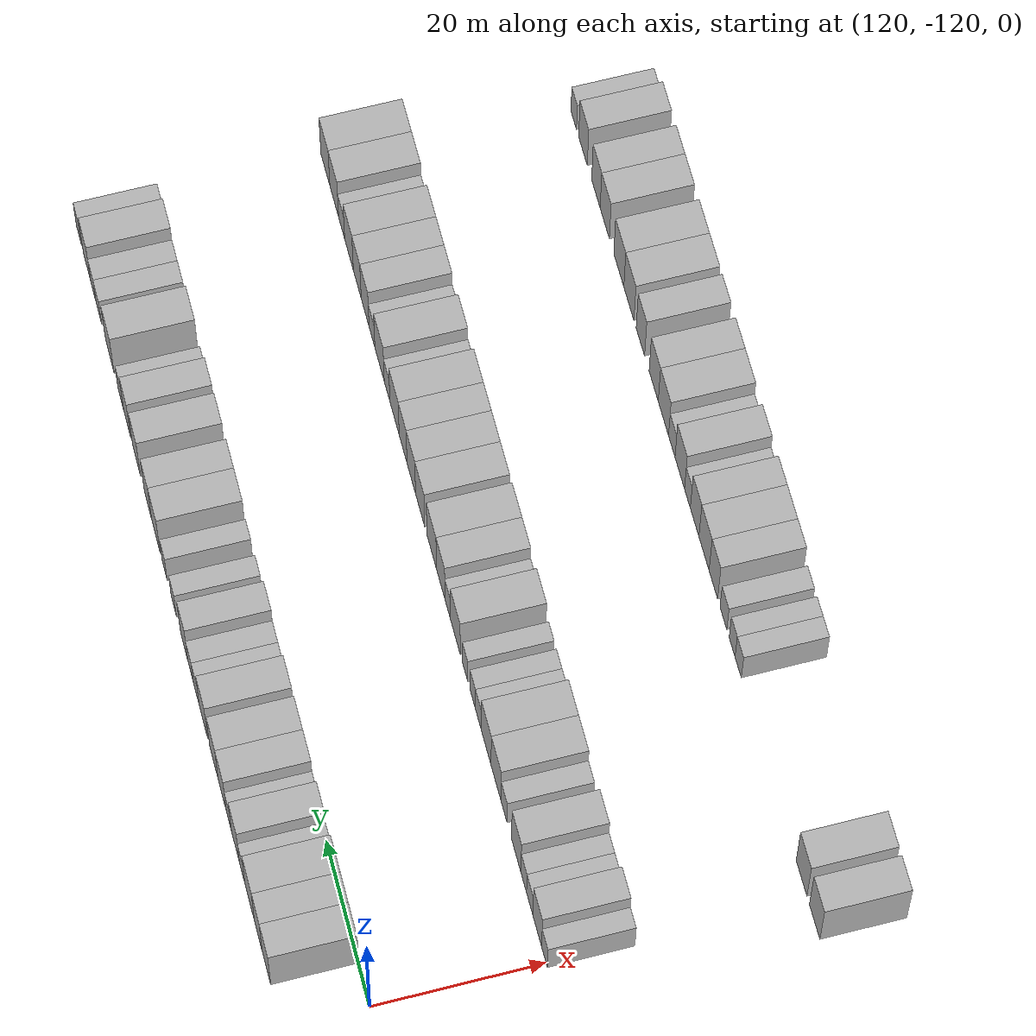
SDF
<sdf version="1.6">
 <world name="default">
  <model name="building_791">
   <static>1</static>
   <pose>115.0000 -112.8110 0 0.000000 0.000000 0.000000</pose>
   <link name="link">
    <pose>0 0 4.50 0 0 0</pose>
    <collision name="collision"><geometry><box><size>10.0000 4.0165 9.0000</size></box></geometry></collision>
    <visual name="visual">
     <cast_shadows>0</cast_shadows>
     <geometry><box><size>10.0000 4.0165 9.0000</size></box></geometry>
     <material>
      <script>
       <uri>model://HANNAS_wall/materials/scripts</uri>
       <uri>model://HANNAS_wall/materials/textures</uri>
       <name>vrc/HANNAS_wall</name>
      </script>
     </material>
    </visual>
   </link>
  </model>
  <model name="building_792">
   <static>1</static>
   <pose>115.0000 -108.9823 0 0.000000 0.000000 0.000000</pose>
   <link name="link">
    <pose>0 0 4.50 0 0 0</pose>
    <collision name="collision"><geometry><box><size>10.0000 3.6409 9.0000</size></box></geometry></collision>
    <visual name="visual">
     <cast_shadows>0</cast_shadows>
     <geometry><box><size>10.0000 3.6409 9.0000</size></box></geometry>
     <material>
      <script>
       <uri>model://HANNAS_wall/materials/scripts</uri>
       <uri>model://HANNAS_wall/materials/textures</uri>
       <name>vrc/HANNAS_wall</name>
      </script>
     </material>
    </visual>
   </link>
  </model>
  <model name="building_793">
   <static>1</static>
   <pose>115.0000 -104.9200 0 0.000000 0.000000 0.000000</pose>
   <link name="link">
    <pose>0 0 4.50 0 0 0</pose>
    <collision name="collision"><geometry><box><size>10.0000 4.4837 9.0000</size></box></geometry></collision>
    <visual name="visual">
     <cast_shadows>0</cast_shadows>
     <geometry><box><size>10.0000 4.4837 9.0000</size></box></geometry>
     <material>
      <script>
       <uri>model://HANNAS_wall/materials/scripts</uri>
       <uri>model://HANNAS_wall/materials/textures</uri>
       <name>vrc/HANNAS_wall</name>
      </script>
     </material>
    </visual>
   </link>
  </model>
  <model name="building_794">
   <static>1</static>
   <pose>115.0000 -101.3698 0 0.000000 0.000000 0.000000</pose>
   <link name="link">
    <pose>0 0 3.00 0 0 0</pose>
    <collision name="collision"><geometry><box><size>10.0000 2.6167 6.0000</size></box></geometry></collision>
    <visual name="visual">
     <cast_shadows>0</cast_shadows>
     <geometry><box><size>10.0000 2.6167 6.0000</size></box></geometry>
     <material>
      <script>
       <uri>model://HANNAS_wall/materials/scripts</uri>
       <uri>model://HANNAS_wall/materials/textures</uri>
       <name>vrc/HANNAS_wall</name>
      </script>
     </material>
    </visual>
   </link>
  </model>
  <model name="building_795">
   <static>1</static>
   <pose>115.0000 -98.1419 0 0.000000 0.000000 0.000000</pose>
   <link name="link">
    <pose>0 0 4.50 0 0 0</pose>
    <collision name="collision"><geometry><box><size>10.0000 3.8392 9.0000</size></box></geometry></collision>
    <visual name="visual">
     <cast_shadows>0</cast_shadows>
     <geometry><box><size>10.0000 3.8392 9.0000</size></box></geometry>
     <material>
      <script>
       <uri>model://HANNAS_wall/materials/scripts</uri>
       <uri>model://HANNAS_wall/materials/textures</uri>
       <name>vrc/HANNAS_wall</name>
      </script>
     </material>
    </visual>
   </link>
  </model>
  <model name="building_796">
   <static>1</static>
   <pose>115.0000 -95.0154 0 0.000000 0.000000 0.000000</pose>
   <link name="link">
    <pose>0 0 3.00 0 0 0</pose>
    <collision name="collision"><geometry><box><size>10.0000 2.4139 6.0000</size></box></geometry></collision>
    <visual name="visual">
     <cast_shadows>0</cast_shadows>
     <geometry><box><size>10.0000 2.4139 6.0000</size></box></geometry>
     <material>
      <script>
       <uri>model://HANNAS_wall/materials/scripts</uri>
       <uri>model://HANNAS_wall/materials/textures</uri>
       <name>vrc/HANNAS_wall</name>
      </script>
     </material>
    </visual>
   </link>
  </model>
  <model name="building_797">
   <static>1</static>
   <pose>115.0000 -91.8523 0 0.000000 0.000000 0.000000</pose>
   <link name="link">
    <pose>0 0 4.50 0 0 0</pose>
    <collision name="collision"><geometry><box><size>10.0000 3.9121 9.0000</size></box></geometry></collision>
    <visual name="visual">
     <cast_shadows>0</cast_shadows>
     <geometry><box><size>10.0000 3.9121 9.0000</size></box></geometry>
     <material>
      <script>
       <uri>model://HANNAS_wall/materials/scripts</uri>
       <uri>model://HANNAS_wall/materials/textures</uri>
       <name>vrc/HANNAS_wall</name>
      </script>
     </material>
    </visual>
   </link>
  </model>
  <model name="building_798">
   <static>1</static>
   <pose>115.0000 -87.8461 0 0.000000 0.000000 0.000000</pose>
   <link name="link">
    <pose>0 0 4.50 0 0 0</pose>
    <collision name="collision"><geometry><box><size>10.0000 4.1003 9.0000</size></box></geometry></collision>
    <visual name="visual">
     <cast_shadows>0</cast_shadows>
     <geometry><box><size>10.0000 4.1003 9.0000</size></box></geometry>
     <material>
      <script>
       <uri>model://HANNAS_wall/materials/scripts</uri>
       <uri>model://HANNAS_wall/materials/textures</uri>
       <name>vrc/HANNAS_wall</name>
      </script>
     </material>
    </visual>
   </link>
  </model>
  <model name="building_799">
   <static>1</static>
   <pose>115.0000 -82.7692 0 0.000000 0.000000 0.000000</pose>
   <link name="link">
    <pose>0 0 4.50 0 0 0</pose>
    <collision name="collision"><geometry><box><size>10.0000 4.0535 9.0000</size></box></geometry></collision>
    <visual name="visual">
     <cast_shadows>0</cast_shadows>
     <geometry><box><size>10.0000 4.0535 9.0000</size></box></geometry>
     <material>
      <script>
       <uri>model://HANNAS_wall/materials/scripts</uri>
       <uri>model://HANNAS_wall/materials/textures</uri>
       <name>vrc/HANNAS_wall</name>
      </script>
     </material>
    </visual>
   </link>
  </model>
  <model name="building_800">
   <static>1</static>
   <pose>115.0000 -79.3093 0 0.000000 0.000000 0.000000</pose>
   <link name="link">
    <pose>0 0 3.00 0 0 0</pose>
    <collision name="collision"><geometry><box><size>10.0000 2.8663 6.0000</size></box></geometry></collision>
    <visual name="visual">
     <cast_shadows>0</cast_shadows>
     <geometry><box><size>10.0000 2.8663 6.0000</size></box></geometry>
     <material>
      <script>
       <uri>model://HANNAS_wall/materials/scripts</uri>
       <uri>model://HANNAS_wall/materials/textures</uri>
       <name>vrc/HANNAS_wall</name>
      </script>
     </material>
    </visual>
   </link>
  </model>
  <model name="building_801">
   <static>1</static>
   <pose>115.0000 -76.5181 0 0.000000 0.000000 0.000000</pose>
   <link name="link">
    <pose>0 0 3.00 0 0 0</pose>
    <collision name="collision"><geometry><box><size>10.0000 2.7161 6.0000</size></box></geometry></collision>
    <visual name="visual">
     <cast_shadows>0</cast_shadows>
     <geometry><box><size>10.0000 2.7161 6.0000</size></box></geometry>
     <material>
      <script>
       <uri>model://HANNAS_wall/materials/scripts</uri>
       <uri>model://HANNAS_wall/materials/textures</uri>
       <name>vrc/HANNAS_wall</name>
      </script>
     </material>
    </visual>
   </link>
  </model>
  <model name="building_802">
   <static>1</static>
   <pose>115.0000 -73.3330 0 0.000000 0.000000 0.000000</pose>
   <link name="link">
    <pose>0 0 4.50 0 0 0</pose>
    <collision name="collision"><geometry><box><size>10.0000 3.6541 9.0000</size></box></geometry></collision>
    <visual name="visual">
     <cast_shadows>0</cast_shadows>
     <geometry><box><size>10.0000 3.6541 9.0000</size></box></geometry>
     <material>
      <script>
       <uri>model://HANNAS_wall/materials/scripts</uri>
       <uri>model://HANNAS_wall/materials/textures</uri>
       <name>vrc/HANNAS_wall</name>
      </script>
     </material>
    </visual>
   </link>
  </model>
  <model name="building_803">
   <static>1</static>
   <pose>115.0000 -68.2081 0 0.000000 0.000000 0.000000</pose>
   <link name="link">
    <pose>0 0 3.00 0 0 0</pose>
    <collision name="collision"><geometry><box><size>10.0000 2.5956 6.0000</size></box></geometry></collision>
    <visual name="visual">
     <cast_shadows>0</cast_shadows>
     <geometry><box><size>10.0000 2.5956 6.0000</size></box></geometry>
     <material>
      <script>
       <uri>model://HANNAS_wall/materials/scripts</uri>
       <uri>model://HANNAS_wall/materials/textures</uri>
       <name>vrc/HANNAS_wall</name>
      </script>
     </material>
    </visual>
   </link>
  </model>
  <model name="building_804">
   <static>1</static>
   <pose>115.0000 -63.6283 0 0.000000 0.000000 0.000000</pose>
   <link name="link">
    <pose>0 0 3.00 0 0 0</pose>
    <collision name="collision"><geometry><box><size>10.0000 2.5640 6.0000</size></box></geometry></collision>
    <visual name="visual">
     <cast_shadows>0</cast_shadows>
     <geometry><box><size>10.0000 2.5640 6.0000</size></box></geometry>
     <material>
      <script>
       <uri>model://HANNAS_wall/materials/scripts</uri>
       <uri>model://HANNAS_wall/materials/textures</uri>
       <name>vrc/HANNAS_wall</name>
      </script>
     </material>
    </visual>
   </link>
  </model>
  <model name="building_805">
   <static>1</static>
   <pose>115.0000 -59.2477 0 0.000000 0.000000 0.000000</pose>
   <link name="link">
    <pose>0 0 4.50 0 0 0</pose>
    <collision name="collision"><geometry><box><size>10.0000 4.1971 9.0000</size></box></geometry></collision>
    <visual name="visual">
     <cast_shadows>0</cast_shadows>
     <geometry><box><size>10.0000 4.1971 9.0000</size></box></geometry>
     <material>
      <script>
       <uri>model://HANNAS_wall/materials/scripts</uri>
       <uri>model://HANNAS_wall/materials/textures</uri>
       <name>vrc/HANNAS_wall</name>
      </script>
     </material>
    </visual>
   </link>
  </model>
  <model name="building_806">
   <static>1</static>
   <pose>115.0000 -55.2984 0 0.000000 0.000000 0.000000</pose>
   <link name="link">
    <pose>0 0 4.50 0 0 0</pose>
    <collision name="collision"><geometry><box><size>10.0000 3.7016 9.0000</size></box></geometry></collision>
    <visual name="visual">
     <cast_shadows>0</cast_shadows>
     <geometry><box><size>10.0000 3.7016 9.0000</size></box></geometry>
     <material>
      <script>
       <uri>model://HANNAS_wall/materials/scripts</uri>
       <uri>model://HANNAS_wall/materials/textures</uri>
       <name>vrc/HANNAS_wall</name>
      </script>
     </material>
    </visual>
   </link>
  </model>
  <model name="building_807">
   <static>1</static>
   <pose>115.0000 -49.4723 0 0.000000 0.000000 0.000000</pose>
   <link name="link">
    <pose>0 0 4.50 0 0 0</pose>
    <collision name="collision"><geometry><box><size>10.0000 3.9506 9.0000</size></box></geometry></collision>
    <visual name="visual">
     <cast_shadows>0</cast_shadows>
     <geometry><box><size>10.0000 3.9506 9.0000</size></box></geometry>
     <material>
      <script>
       <uri>model://HANNAS_wall/materials/scripts</uri>
       <uri>model://HANNAS_wall/materials/textures</uri>
       <name>vrc/HANNAS_wall</name>
      </script>
     </material>
    </visual>
   </link>
  </model>
  <model name="building_808">
   <static>1</static>
   <pose>115.0000 -44.6954 0 0.000000 0.000000 0.000000</pose>
   <link name="link">
    <pose>0 0 4.50 0 0 0</pose>
    <collision name="collision"><geometry><box><size>10.0000 3.6032 9.0000</size></box></geometry></collision>
    <visual name="visual">
     <cast_shadows>0</cast_shadows>
     <geometry><box><size>10.0000 3.6032 9.0000</size></box></geometry>
     <material>
      <script>
       <uri>model://HANNAS_wall/materials/scripts</uri>
       <uri>model://HANNAS_wall/materials/textures</uri>
       <name>vrc/HANNAS_wall</name>
      </script>
     </material>
    </visual>
   </link>
  </model>
  <model name="building_809">
   <static>1</static>
   <pose>115.0000 -41.4420 0 0.000000 0.000000 0.000000</pose>
   <link name="link">
    <pose>0 0 3.00 0 0 0</pose>
    <collision name="collision"><geometry><box><size>10.0000 2.9036 6.0000</size></box></geometry></collision>
    <visual name="visual">
     <cast_shadows>0</cast_shadows>
     <geometry><box><size>10.0000 2.9036 6.0000</size></box></geometry>
     <material>
      <script>
       <uri>model://HANNAS_wall/materials/scripts</uri>
       <uri>model://HANNAS_wall/materials/textures</uri>
       <name>vrc/HANNAS_wall</name>
      </script>
     </material>
    </visual>
   </link>
  </model>
  <model name="building_810">
   <static>1</static>
   <pose>115.0000 -35.7564 0 0.000000 0.000000 0.000000</pose>
   <link name="link">
    <pose>0 0 4.50 0 0 0</pose>
    <collision name="collision"><geometry><box><size>10.0000 4.4676 9.0000</size></box></geometry></collision>
    <visual name="visual">
     <cast_shadows>0</cast_shadows>
     <geometry><box><size>10.0000 4.4676 9.0000</size></box></geometry>
     <material>
      <script>
       <uri>model://HANNAS_wall/materials/scripts</uri>
       <uri>model://HANNAS_wall/materials/textures</uri>
       <name>vrc/HANNAS_wall</name>
      </script>
     </material>
    </visual>
   </link>
  </model>
  <model name="building_811">
   <static>1</static>
   <pose>115.0000 -30.0837 0 0.000000 0.000000 0.000000</pose>
   <link name="link">
    <pose>0 0 3.00 0 0 0</pose>
    <collision name="collision"><geometry><box><size>10.0000 2.8776 6.0000</size></box></geometry></collision>
    <visual name="visual">
     <cast_shadows>0</cast_shadows>
     <geometry><box><size>10.0000 2.8776 6.0000</size></box></geometry>
     <material>
      <script>
       <uri>model://HANNAS_wall/materials/scripts</uri>
       <uri>model://HANNAS_wall/materials/textures</uri>
       <name>vrc/HANNAS_wall</name>
      </script>
     </material>
    </visual>
   </link>
  </model>
  <model name="building_812">
   <static>1</static>
   <pose>115.0000 -27.2597 0 0.000000 0.000000 0.000000</pose>
   <link name="link">
    <pose>0 0 3.00 0 0 0</pose>
    <collision name="collision"><geometry><box><size>10.0000 2.7705 6.0000</size></box></geometry></collision>
    <visual name="visual">
     <cast_shadows>0</cast_shadows>
     <geometry><box><size>10.0000 2.7705 6.0000</size></box></geometry>
     <material>
      <script>
       <uri>model://HANNAS_wall/materials/scripts</uri>
       <uri>model://HANNAS_wall/materials/textures</uri>
       <name>vrc/HANNAS_wall</name>
      </script>
     </material>
    </visual>
   </link>
  </model>
  <model name="building_813">
   <static>1</static>
   <pose>115.0000 -23.9004 0 0.000000 0.000000 0.000000</pose>
   <link name="link">
    <pose>0 0 4.50 0 0 0</pose>
    <collision name="collision"><geometry><box><size>10.0000 3.9480 9.0000</size></box></geometry></collision>
    <visual name="visual">
     <cast_shadows>0</cast_shadows>
     <geometry><box><size>10.0000 3.9480 9.0000</size></box></geometry>
     <material>
      <script>
       <uri>model://HANNAS_wall/materials/scripts</uri>
       <uri>model://HANNAS_wall/materials/textures</uri>
       <name>vrc/HANNAS_wall</name>
      </script>
     </material>
    </visual>
   </link>
  </model>
  <model name="building_814">
   <static>1</static>
   <pose>115.0000 -19.6291 0 0.000000 0.000000 0.000000</pose>
   <link name="link">
    <pose>0 0 3.00 0 0 0</pose>
    <collision name="collision"><geometry><box><size>10.0000 2.5946 6.0000</size></box></geometry></collision>
    <visual name="visual">
     <cast_shadows>0</cast_shadows>
     <geometry><box><size>10.0000 2.5946 6.0000</size></box></geometry>
     <material>
      <script>
       <uri>model://HANNAS_wall/materials/scripts</uri>
       <uri>model://HANNAS_wall/materials/textures</uri>
       <name>vrc/HANNAS_wall</name>
      </script>
     </material>
    </visual>
   </link>
  </model>
  <model name="building_1012">
   <static>1</static>
   <pose>145.0000 -119.3217 0 0.000000 0.000000 0.000000</pose>
   <link name="link">
    <pose>0 0 3.00 0 0 0</pose>
    <collision name="collision"><geometry><box><size>10.0000 2.4776 6.0000</size></box></geometry></collision>
    <visual name="visual">
     <cast_shadows>0</cast_shadows>
     <geometry><box><size>10.0000 2.4776 6.0000</size></box></geometry>
     <material>
      <script>
       <uri>model://HANNAS_wall/materials/scripts</uri>
       <uri>model://HANNAS_wall/materials/textures</uri>
       <name>vrc/HANNAS_wall</name>
      </script>
     </material>
    </visual>
   </link>
  </model>
  <model name="building_1013">
   <static>1</static>
   <pose>145.0000 -116.1931 0 0.000000 0.000000 0.000000</pose>
   <link name="link">
    <pose>0 0 4.50 0 0 0</pose>
    <collision name="collision"><geometry><box><size>10.0000 3.7795 9.0000</size></box></geometry></collision>
    <visual name="visual">
     <cast_shadows>0</cast_shadows>
     <geometry><box><size>10.0000 3.7795 9.0000</size></box></geometry>
     <material>
      <script>
       <uri>model://HANNAS_wall/materials/scripts</uri>
       <uri>model://HANNAS_wall/materials/textures</uri>
       <name>vrc/HANNAS_wall</name>
      </script>
     </material>
    </visual>
   </link>
  </model>
  <model name="building_1014">
   <static>1</static>
   <pose>145.0000 -112.9130 0 0.000000 0.000000 0.000000</pose>
   <link name="link">
    <pose>0 0 3.00 0 0 0</pose>
    <collision name="collision"><geometry><box><size>10.0000 2.7807 6.0000</size></box></geometry></collision>
    <visual name="visual">
     <cast_shadows>0</cast_shadows>
     <geometry><box><size>10.0000 2.7807 6.0000</size></box></geometry>
     <material>
      <script>
       <uri>model://HANNAS_wall/materials/scripts</uri>
       <uri>model://HANNAS_wall/materials/textures</uri>
       <name>vrc/HANNAS_wall</name>
      </script>
     </material>
    </visual>
   </link>
  </model>
  <model name="building_1015">
   <static>1</static>
   <pose>145.0000 -110.3078 0 0.000000 0.000000 0.000000</pose>
   <link name="link">
    <pose>0 0 3.00 0 0 0</pose>
    <collision name="collision"><geometry><box><size>10.0000 2.4298 6.0000</size></box></geometry></collision>
    <visual name="visual">
     <cast_shadows>0</cast_shadows>
     <geometry><box><size>10.0000 2.4298 6.0000</size></box></geometry>
     <material>
      <script>
       <uri>model://HANNAS_wall/materials/scripts</uri>
       <uri>model://HANNAS_wall/materials/textures</uri>
       <name>vrc/HANNAS_wall</name>
      </script>
     </material>
    </visual>
   </link>
  </model>
  <model name="building_1016">
   <static>1</static>
   <pose>145.0000 -107.0396 0 0.000000 0.000000 0.000000</pose>
   <link name="link">
    <pose>0 0 4.50 0 0 0</pose>
    <collision name="collision"><geometry><box><size>10.0000 4.1065 9.0000</size></box></geometry></collision>
    <visual name="visual">
     <cast_shadows>0</cast_shadows>
     <geometry><box><size>10.0000 4.1065 9.0000</size></box></geometry>
     <material>
      <script>
       <uri>model://HANNAS_wall/materials/scripts</uri>
       <uri>model://HANNAS_wall/materials/textures</uri>
       <name>vrc/HANNAS_wall</name>
      </script>
     </material>
    </visual>
   </link>
  </model>
  <model name="building_1017">
   <static>1</static>
   <pose>145.0000 -101.6500 0 0.000000 0.000000 0.000000</pose>
   <link name="link">
    <pose>0 0 3.00 0 0 0</pose>
    <collision name="collision"><geometry><box><size>10.0000 2.6728 6.0000</size></box></geometry></collision>
    <visual name="visual">
     <cast_shadows>0</cast_shadows>
     <geometry><box><size>10.0000 2.6728 6.0000</size></box></geometry>
     <material>
      <script>
       <uri>model://HANNAS_wall/materials/scripts</uri>
       <uri>model://HANNAS_wall/materials/textures</uri>
       <name>vrc/HANNAS_wall</name>
      </script>
     </material>
    </visual>
   </link>
  </model>
  <model name="building_1018">
   <static>1</static>
   <pose>145.0000 -98.1160 0 0.000000 0.000000 0.000000</pose>
   <link name="link">
    <pose>0 0 4.50 0 0 0</pose>
    <collision name="collision"><geometry><box><size>10.0000 4.3951 9.0000</size></box></geometry></collision>
    <visual name="visual">
     <cast_shadows>0</cast_shadows>
     <geometry><box><size>10.0000 4.3951 9.0000</size></box></geometry>
     <material>
      <script>
       <uri>model://HANNAS_wall/materials/scripts</uri>
       <uri>model://HANNAS_wall/materials/textures</uri>
       <name>vrc/HANNAS_wall</name>
      </script>
     </material>
    </visual>
   </link>
  </model>
  <model name="building_1019">
   <static>1</static>
   <pose>145.0000 -93.7295 0 0.000000 0.000000 0.000000</pose>
   <link name="link">
    <pose>0 0 4.50 0 0 0</pose>
    <collision name="collision"><geometry><box><size>10.0000 4.3779 9.0000</size></box></geometry></collision>
    <visual name="visual">
     <cast_shadows>0</cast_shadows>
     <geometry><box><size>10.0000 4.3779 9.0000</size></box></geometry>
     <material>
      <script>
       <uri>model://HANNAS_wall/materials/scripts</uri>
       <uri>model://HANNAS_wall/materials/textures</uri>
       <name>vrc/HANNAS_wall</name>
      </script>
     </material>
    </visual>
   </link>
  </model>
  <model name="building_1020">
   <static>1</static>
   <pose>145.0000 -90.2358 0 0.000000 0.000000 0.000000</pose>
   <link name="link">
    <pose>0 0 3.00 0 0 0</pose>
    <collision name="collision"><geometry><box><size>10.0000 2.6094 6.0000</size></box></geometry></collision>
    <visual name="visual">
     <cast_shadows>0</cast_shadows>
     <geometry><box><size>10.0000 2.6094 6.0000</size></box></geometry>
     <material>
      <script>
       <uri>model://HANNAS_wall/materials/scripts</uri>
       <uri>model://HANNAS_wall/materials/textures</uri>
       <name>vrc/HANNAS_wall</name>
      </script>
     </material>
    </visual>
   </link>
  </model>
  <model name="building_1021">
   <static>1</static>
   <pose>145.0000 -87.7082 0 0.000000 0.000000 0.000000</pose>
   <link name="link">
    <pose>0 0 3.00 0 0 0</pose>
    <collision name="collision"><geometry><box><size>10.0000 2.4458 6.0000</size></box></geometry></collision>
    <visual name="visual">
     <cast_shadows>0</cast_shadows>
     <geometry><box><size>10.0000 2.4458 6.0000</size></box></geometry>
     <material>
      <script>
       <uri>model://HANNAS_wall/materials/scripts</uri>
       <uri>model://HANNAS_wall/materials/textures</uri>
       <name>vrc/HANNAS_wall</name>
      </script>
     </material>
    </visual>
   </link>
  </model>
  <model name="building_1022">
   <static>1</static>
   <pose>145.0000 -84.2808 0 0.000000 0.000000 0.000000</pose>
   <link name="link">
    <pose>0 0 3.00 0 0 0</pose>
    <collision name="collision"><geometry><box><size>10.0000 2.4089 6.0000</size></box></geometry></collision>
    <visual name="visual">
     <cast_shadows>0</cast_shadows>
     <geometry><box><size>10.0000 2.4089 6.0000</size></box></geometry>
     <material>
      <script>
       <uri>model://HANNAS_wall/materials/scripts</uri>
       <uri>model://HANNAS_wall/materials/textures</uri>
       <name>vrc/HANNAS_wall</name>
      </script>
     </material>
    </visual>
   </link>
  </model>
  <model name="building_1023">
   <static>1</static>
   <pose>145.0000 -79.8767 0 0.000000 0.000000 0.000000</pose>
   <link name="link">
    <pose>0 0 4.50 0 0 0</pose>
    <collision name="collision"><geometry><box><size>10.0000 4.3994 9.0000</size></box></geometry></collision>
    <visual name="visual">
     <cast_shadows>0</cast_shadows>
     <geometry><box><size>10.0000 4.3994 9.0000</size></box></geometry>
     <material>
      <script>
       <uri>model://HANNAS_wall/materials/scripts</uri>
       <uri>model://HANNAS_wall/materials/textures</uri>
       <name>vrc/HANNAS_wall</name>
      </script>
     </material>
    </visual>
   </link>
  </model>
  <model name="building_1024">
   <static>1</static>
   <pose>145.0000 -76.3917 0 0.000000 0.000000 0.000000</pose>
   <link name="link">
    <pose>0 0 3.00 0 0 0</pose>
    <collision name="collision"><geometry><box><size>10.0000 2.5705 6.0000</size></box></geometry></collision>
    <visual name="visual">
     <cast_shadows>0</cast_shadows>
     <geometry><box><size>10.0000 2.5705 6.0000</size></box></geometry>
     <material>
      <script>
       <uri>model://HANNAS_wall/materials/scripts</uri>
       <uri>model://HANNAS_wall/materials/textures</uri>
       <name>vrc/HANNAS_wall</name>
      </script>
     </material>
    </visual>
   </link>
  </model>
  <model name="building_1025">
   <static>1</static>
   <pose>145.0000 -73.1551 0 0.000000 0.000000 0.000000</pose>
   <link name="link">
    <pose>0 0 4.50 0 0 0</pose>
    <collision name="collision"><geometry><box><size>10.0000 3.9028 9.0000</size></box></geometry></collision>
    <visual name="visual">
     <cast_shadows>0</cast_shadows>
     <geometry><box><size>10.0000 3.9028 9.0000</size></box></geometry>
     <material>
      <script>
       <uri>model://HANNAS_wall/materials/scripts</uri>
       <uri>model://HANNAS_wall/materials/textures</uri>
       <name>vrc/HANNAS_wall</name>
      </script>
     </material>
    </visual>
   </link>
  </model>
  <model name="building_1026">
   <static>1</static>
   <pose>145.0000 -68.9981 0 0.000000 0.000000 0.000000</pose>
   <link name="link">
    <pose>0 0 4.50 0 0 0</pose>
    <collision name="collision"><geometry><box><size>10.0000 4.4112 9.0000</size></box></geometry></collision>
    <visual name="visual">
     <cast_shadows>0</cast_shadows>
     <geometry><box><size>10.0000 4.4112 9.0000</size></box></geometry>
     <material>
      <script>
       <uri>model://HANNAS_wall/materials/scripts</uri>
       <uri>model://HANNAS_wall/materials/textures</uri>
       <name>vrc/HANNAS_wall</name>
      </script>
     </material>
    </visual>
   </link>
  </model>
  <model name="building_1027">
   <static>1</static>
   <pose>145.0000 -63.6652 0 0.000000 0.000000 0.000000</pose>
   <link name="link">
    <pose>0 0 4.50 0 0 0</pose>
    <collision name="collision"><geometry><box><size>10.0000 4.2545 9.0000</size></box></geometry></collision>
    <visual name="visual">
     <cast_shadows>0</cast_shadows>
     <geometry><box><size>10.0000 4.2545 9.0000</size></box></geometry>
     <material>
      <script>
       <uri>model://HANNAS_wall/materials/scripts</uri>
       <uri>model://HANNAS_wall/materials/textures</uri>
       <name>vrc/HANNAS_wall</name>
      </script>
     </material>
    </visual>
   </link>
  </model>
  <model name="building_1028">
   <static>1</static>
   <pose>145.0000 -59.5432 0 0.000000 0.000000 0.000000</pose>
   <link name="link">
    <pose>0 0 4.50 0 0 0</pose>
    <collision name="collision"><geometry><box><size>10.0000 3.9895 9.0000</size></box></geometry></collision>
    <visual name="visual">
     <cast_shadows>0</cast_shadows>
     <geometry><box><size>10.0000 3.9895 9.0000</size></box></geometry>
     <material>
      <script>
       <uri>model://HANNAS_wall/materials/scripts</uri>
       <uri>model://HANNAS_wall/materials/textures</uri>
       <name>vrc/HANNAS_wall</name>
      </script>
     </material>
    </visual>
   </link>
  </model>
  <model name="building_1029">
   <static>1</static>
   <pose>145.0000 -55.7143 0 0.000000 0.000000 0.000000</pose>
   <link name="link">
    <pose>0 0 4.50 0 0 0</pose>
    <collision name="collision"><geometry><box><size>10.0000 3.6684 9.0000</size></box></geometry></collision>
    <visual name="visual">
     <cast_shadows>0</cast_shadows>
     <geometry><box><size>10.0000 3.6684 9.0000</size></box></geometry>
     <material>
      <script>
       <uri>model://HANNAS_wall/materials/scripts</uri>
       <uri>model://HANNAS_wall/materials/textures</uri>
       <name>vrc/HANNAS_wall</name>
      </script>
     </material>
    </visual>
   </link>
  </model>
  <model name="building_1030">
   <static>1</static>
   <pose>145.0000 -51.6981 0 0.000000 0.000000 0.000000</pose>
   <link name="link">
    <pose>0 0 4.50 0 0 0</pose>
    <collision name="collision"><geometry><box><size>10.0000 4.3640 9.0000</size></box></geometry></collision>
    <visual name="visual">
     <cast_shadows>0</cast_shadows>
     <geometry><box><size>10.0000 4.3640 9.0000</size></box></geometry>
     <material>
      <script>
       <uri>model://HANNAS_wall/materials/scripts</uri>
       <uri>model://HANNAS_wall/materials/textures</uri>
       <name>vrc/HANNAS_wall</name>
      </script>
     </material>
    </visual>
   </link>
  </model>
  <model name="building_1031">
   <static>1</static>
   <pose>145.0000 -48.1791 0 0.000000 0.000000 0.000000</pose>
   <link name="link">
    <pose>0 0 3.00 0 0 0</pose>
    <collision name="collision"><geometry><box><size>10.0000 2.6740 6.0000</size></box></geometry></collision>
    <visual name="visual">
     <cast_shadows>0</cast_shadows>
     <geometry><box><size>10.0000 2.6740 6.0000</size></box></geometry>
     <material>
      <script>
       <uri>model://HANNAS_wall/materials/scripts</uri>
       <uri>model://HANNAS_wall/materials/textures</uri>
       <name>vrc/HANNAS_wall</name>
      </script>
     </material>
    </visual>
   </link>
  </model>
  <model name="building_1032">
   <static>1</static>
   <pose>145.0000 -44.6194 0 0.000000 0.000000 0.000000</pose>
   <link name="link">
    <pose>0 0 4.50 0 0 0</pose>
    <collision name="collision"><geometry><box><size>10.0000 4.4454 9.0000</size></box></geometry></collision>
    <visual name="visual">
     <cast_shadows>0</cast_shadows>
     <geometry><box><size>10.0000 4.4454 9.0000</size></box></geometry>
     <material>
      <script>
       <uri>model://HANNAS_wall/materials/scripts</uri>
       <uri>model://HANNAS_wall/materials/textures</uri>
       <name>vrc/HANNAS_wall</name>
      </script>
     </material>
    </visual>
   </link>
  </model>
  <model name="building_1033">
   <static>1</static>
   <pose>145.0000 -41.0019 0 0.000000 0.000000 0.000000</pose>
   <link name="link">
    <pose>0 0 3.00 0 0 0</pose>
    <collision name="collision"><geometry><box><size>10.0000 2.7894 6.0000</size></box></geometry></collision>
    <visual name="visual">
     <cast_shadows>0</cast_shadows>
     <geometry><box><size>10.0000 2.7894 6.0000</size></box></geometry>
     <material>
      <script>
       <uri>model://HANNAS_wall/materials/scripts</uri>
       <uri>model://HANNAS_wall/materials/textures</uri>
       <name>vrc/HANNAS_wall</name>
      </script>
     </material>
    </visual>
   </link>
  </model>
  <model name="building_1034">
   <static>1</static>
   <pose>145.0000 -37.7345 0 0.000000 0.000000 0.000000</pose>
   <link name="link">
    <pose>0 0 4.50 0 0 0</pose>
    <collision name="collision"><geometry><box><size>10.0000 3.7454 9.0000</size></box></geometry></collision>
    <visual name="visual">
     <cast_shadows>0</cast_shadows>
     <geometry><box><size>10.0000 3.7454 9.0000</size></box></geometry>
     <material>
      <script>
       <uri>model://HANNAS_wall/materials/scripts</uri>
       <uri>model://HANNAS_wall/materials/textures</uri>
       <name>vrc/HANNAS_wall</name>
      </script>
     </material>
    </visual>
   </link>
  </model>
  <model name="building_1035">
   <static>1</static>
   <pose>145.0000 -33.9746 0 0.000000 0.000000 0.000000</pose>
   <link name="link">
    <pose>0 0 4.50 0 0 0</pose>
    <collision name="collision"><geometry><box><size>10.0000 3.7745 9.0000</size></box></geometry></collision>
    <visual name="visual">
     <cast_shadows>0</cast_shadows>
     <geometry><box><size>10.0000 3.7745 9.0000</size></box></geometry>
     <material>
      <script>
       <uri>model://HANNAS_wall/materials/scripts</uri>
       <uri>model://HANNAS_wall/materials/textures</uri>
       <name>vrc/HANNAS_wall</name>
      </script>
     </material>
    </visual>
   </link>
  </model>
  <model name="building_1036">
   <static>1</static>
   <pose>145.0000 -29.9859 0 0.000000 0.000000 0.000000</pose>
   <link name="link">
    <pose>0 0 4.50 0 0 0</pose>
    <collision name="collision"><geometry><box><size>10.0000 4.2030 9.0000</size></box></geometry></collision>
    <visual name="visual">
     <cast_shadows>0</cast_shadows>
     <geometry><box><size>10.0000 4.2030 9.0000</size></box></geometry>
     <material>
      <script>
       <uri>model://HANNAS_wall/materials/scripts</uri>
       <uri>model://HANNAS_wall/materials/textures</uri>
       <name>vrc/HANNAS_wall</name>
      </script>
     </material>
    </visual>
   </link>
  </model>
  <model name="building_1037">
   <static>1</static>
   <pose>145.0000 -26.4082 0 0.000000 0.000000 0.000000</pose>
   <link name="link">
    <pose>0 0 3.00 0 0 0</pose>
    <collision name="collision"><geometry><box><size>10.0000 2.9523 6.0000</size></box></geometry></collision>
    <visual name="visual">
     <cast_shadows>0</cast_shadows>
     <geometry><box><size>10.0000 2.9523 6.0000</size></box></geometry>
     <material>
      <script>
       <uri>model://HANNAS_wall/materials/scripts</uri>
       <uri>model://HANNAS_wall/materials/textures</uri>
       <name>vrc/HANNAS_wall</name>
      </script>
     </material>
    </visual>
   </link>
  </model>
  <model name="building_1038">
   <static>1</static>
   <pose>145.0000 -22.7975 0 0.000000 0.000000 0.000000</pose>
   <link name="link">
    <pose>0 0 4.50 0 0 0</pose>
    <collision name="collision"><geometry><box><size>10.0000 4.2691 9.0000</size></box></geometry></collision>
    <visual name="visual">
     <cast_shadows>0</cast_shadows>
     <geometry><box><size>10.0000 4.2691 9.0000</size></box></geometry>
     <material>
      <script>
       <uri>model://HANNAS_wall/materials/scripts</uri>
       <uri>model://HANNAS_wall/materials/textures</uri>
       <name>vrc/HANNAS_wall</name>
      </script>
     </material>
    </visual>
   </link>
  </model>
  <model name="building_1039">
   <static>1</static>
   <pose>145.0000 -18.4572 0 0.000000 0.000000 0.000000</pose>
   <link name="link">
    <pose>0 0 4.50 0 0 0</pose>
    <collision name="collision"><geometry><box><size>10.0000 4.4117 9.0000</size></box></geometry></collision>
    <visual name="visual">
     <cast_shadows>0</cast_shadows>
     <geometry><box><size>10.0000 4.4117 9.0000</size></box></geometry>
     <material>
      <script>
       <uri>model://HANNAS_wall/materials/scripts</uri>
       <uri>model://HANNAS_wall/materials/textures</uri>
       <name>vrc/HANNAS_wall</name>
      </script>
     </material>
    </visual>
   </link>
  </model>
  <model name="building_1233">
   <static>1</static>
   <pose>175.0000 -122.8401 0 0.000000 0.000000 0.000000</pose>
   <link name="link">
    <pose>0 0 4.50 0 0 0</pose>
    <collision name="collision"><geometry><box><size>10.0000 4.2099 9.0000</size></box></geometry></collision>
    <visual name="visual">
     <cast_shadows>0</cast_shadows>
     <geometry><box><size>10.0000 4.2099 9.0000</size></box></geometry>
     <material>
      <script>
       <uri>model://HANNAS_wall/materials/scripts</uri>
       <uri>model://HANNAS_wall/materials/textures</uri>
       <name>vrc/HANNAS_wall</name>
      </script>
     </material>
    </visual>
   </link>
  </model>
  <model name="building_1234">
   <static>1</static>
   <pose>175.0000 -117.5663 0 0.000000 0.000000 0.000000</pose>
   <link name="link">
    <pose>0 0 4.50 0 0 0</pose>
    <collision name="collision"><geometry><box><size>10.0000 4.3377 9.0000</size></box></geometry></collision>
    <visual name="visual">
     <cast_shadows>0</cast_shadows>
     <geometry><box><size>10.0000 4.3377 9.0000</size></box></geometry>
     <material>
      <script>
       <uri>model://HANNAS_wall/materials/scripts</uri>
       <uri>model://HANNAS_wall/materials/textures</uri>
       <name>vrc/HANNAS_wall</name>
      </script>
     </material>
    </visual>
   </link>
  </model>
  <model name="building_1235">
   <static>1</static>
   <pose>175.0000 -91.4595 0 0.000000 0.000000 0.000000</pose>
   <link name="link">
    <pose>0 0 3.00 0 0 0</pose>
    <collision name="collision"><geometry><box><size>10.0000 2.6253 6.0000</size></box></geometry></collision>
    <visual name="visual">
     <cast_shadows>0</cast_shadows>
     <geometry><box><size>10.0000 2.6253 6.0000</size></box></geometry>
     <material>
      <script>
       <uri>model://HANNAS_wall/materials/scripts</uri>
       <uri>model://HANNAS_wall/materials/textures</uri>
       <name>vrc/HANNAS_wall</name>
      </script>
     </material>
    </visual>
   </link>
  </model>
  <model name="building_1236">
   <static>1</static>
   <pose>175.0000 -88.9151 0 0.000000 0.000000 0.000000</pose>
   <link name="link">
    <pose>0 0 3.00 0 0 0</pose>
    <collision name="collision"><geometry><box><size>10.0000 2.4635 6.0000</size></box></geometry></collision>
    <visual name="visual">
     <cast_shadows>0</cast_shadows>
     <geometry><box><size>10.0000 2.4635 6.0000</size></box></geometry>
     <material>
      <script>
       <uri>model://HANNAS_wall/materials/scripts</uri>
       <uri>model://HANNAS_wall/materials/textures</uri>
       <name>vrc/HANNAS_wall</name>
      </script>
     </material>
    </visual>
   </link>
  </model>
  <model name="building_1237">
   <static>1</static>
   <pose>175.0000 -85.2493 0 0.000000 0.000000 0.000000</pose>
   <link name="link">
    <pose>0 0 3.00 0 0 0</pose>
    <collision name="collision"><geometry><box><size>10.0000 2.8681 6.0000</size></box></geometry></collision>
    <visual name="visual">
     <cast_shadows>0</cast_shadows>
     <geometry><box><size>10.0000 2.8681 6.0000</size></box></geometry>
     <material>
      <script>
       <uri>model://HANNAS_wall/materials/scripts</uri>
       <uri>model://HANNAS_wall/materials/textures</uri>
       <name>vrc/HANNAS_wall</name>
      </script>
     </material>
    </visual>
   </link>
  </model>
  <model name="building_1238">
   <static>1</static>
   <pose>175.0000 -81.0007 0 0.000000 0.000000 0.000000</pose>
   <link name="link">
    <pose>0 0 4.50 0 0 0</pose>
    <collision name="collision"><geometry><box><size>10.0000 3.6291 9.0000</size></box></geometry></collision>
    <visual name="visual">
     <cast_shadows>0</cast_shadows>
     <geometry><box><size>10.0000 3.6291 9.0000</size></box></geometry>
     <material>
      <script>
       <uri>model://HANNAS_wall/materials/scripts</uri>
       <uri>model://HANNAS_wall/materials/textures</uri>
       <name>vrc/HANNAS_wall</name>
      </script>
     </material>
    </visual>
   </link>
  </model>
  <model name="building_1239">
   <static>1</static>
   <pose>175.0000 -77.0147 0 0.000000 0.000000 0.000000</pose>
   <link name="link">
    <pose>0 0 4.50 0 0 0</pose>
    <collision name="collision"><geometry><box><size>10.0000 4.3429 9.0000</size></box></geometry></collision>
    <visual name="visual">
     <cast_shadows>0</cast_shadows>
     <geometry><box><size>10.0000 4.3429 9.0000</size></box></geometry>
     <material>
      <script>
       <uri>model://HANNAS_wall/materials/scripts</uri>
       <uri>model://HANNAS_wall/materials/textures</uri>
       <name>vrc/HANNAS_wall</name>
      </script>
     </material>
    </visual>
   </link>
  </model>
  <model name="building_1240">
   <static>1</static>
   <pose>175.0000 -73.0088 0 0.000000 0.000000 0.000000</pose>
   <link name="link">
    <pose>0 0 4.50 0 0 0</pose>
    <collision name="collision"><geometry><box><size>10.0000 3.6689 9.0000</size></box></geometry></collision>
    <visual name="visual">
     <cast_shadows>0</cast_shadows>
     <geometry><box><size>10.0000 3.6689 9.0000</size></box></geometry>
     <material>
      <script>
       <uri>model://HANNAS_wall/materials/scripts</uri>
       <uri>model://HANNAS_wall/materials/textures</uri>
       <name>vrc/HANNAS_wall</name>
      </script>
     </material>
    </visual>
   </link>
  </model>
  <model name="building_1241">
   <static>1</static>
   <pose>175.0000 -69.9193 0 0.000000 0.000000 0.000000</pose>
   <link name="link">
    <pose>0 0 3.00 0 0 0</pose>
    <collision name="collision"><geometry><box><size>10.0000 2.5101 6.0000</size></box></geometry></collision>
    <visual name="visual">
     <cast_shadows>0</cast_shadows>
     <geometry><box><size>10.0000 2.5101 6.0000</size></box></geometry>
     <material>
      <script>
       <uri>model://HANNAS_wall/materials/scripts</uri>
       <uri>model://HANNAS_wall/materials/textures</uri>
       <name>vrc/HANNAS_wall</name>
      </script>
     </material>
    </visual>
   </link>
  </model>
  <model name="building_1242">
   <static>1</static>
   <pose>175.0000 -66.6086 0 0.000000 0.000000 0.000000</pose>
   <link name="link">
    <pose>0 0 4.50 0 0 0</pose>
    <collision name="collision"><geometry><box><size>10.0000 4.1113 9.0000</size></box></geometry></collision>
    <visual name="visual">
     <cast_shadows>0</cast_shadows>
     <geometry><box><size>10.0000 4.1113 9.0000</size></box></geometry>
     <material>
      <script>
       <uri>model://HANNAS_wall/materials/scripts</uri>
       <uri>model://HANNAS_wall/materials/textures</uri>
       <name>vrc/HANNAS_wall</name>
      </script>
     </material>
    </visual>
   </link>
  </model>
  <model name="building_1243">
   <static>1</static>
   <pose>175.0000 -63.1489 0 0.000000 0.000000 0.000000</pose>
   <link name="link">
    <pose>0 0 3.00 0 0 0</pose>
    <collision name="collision"><geometry><box><size>10.0000 2.8081 6.0000</size></box></geometry></collision>
    <visual name="visual">
     <cast_shadows>0</cast_shadows>
     <geometry><box><size>10.0000 2.8081 6.0000</size></box></geometry>
     <material>
      <script>
       <uri>model://HANNAS_wall/materials/scripts</uri>
       <uri>model://HANNAS_wall/materials/textures</uri>
       <name>vrc/HANNAS_wall</name>
      </script>
     </material>
    </visual>
   </link>
  </model>
  <model name="building_1244">
   <static>1</static>
   <pose>175.0000 -59.4982 0 0.000000 0.000000 0.000000</pose>
   <link name="link">
    <pose>0 0 4.50 0 0 0</pose>
    <collision name="collision"><geometry><box><size>10.0000 4.4933 9.0000</size></box></geometry></collision>
    <visual name="visual">
     <cast_shadows>0</cast_shadows>
     <geometry><box><size>10.0000 4.4933 9.0000</size></box></geometry>
     <material>
      <script>
       <uri>model://HANNAS_wall/materials/scripts</uri>
       <uri>model://HANNAS_wall/materials/textures</uri>
       <name>vrc/HANNAS_wall</name>
      </script>
     </material>
    </visual>
   </link>
  </model>
  <model name="building_1245">
   <static>1</static>
   <pose>175.0000 -55.2558 0 0.000000 0.000000 0.000000</pose>
   <link name="link">
    <pose>0 0 4.50 0 0 0</pose>
    <collision name="collision"><geometry><box><size>10.0000 3.9915 9.0000</size></box></geometry></collision>
    <visual name="visual">
     <cast_shadows>0</cast_shadows>
     <geometry><box><size>10.0000 3.9915 9.0000</size></box></geometry>
     <material>
      <script>
       <uri>model://HANNAS_wall/materials/scripts</uri>
       <uri>model://HANNAS_wall/materials/textures</uri>
       <name>vrc/HANNAS_wall</name>
      </script>
     </material>
    </visual>
   </link>
  </model>
  <model name="building_1246">
   <static>1</static>
   <pose>175.0000 -49.3992 0 0.000000 0.000000 0.000000</pose>
   <link name="link">
    <pose>0 0 4.50 0 0 0</pose>
    <collision name="collision"><geometry><box><size>10.0000 3.7216 9.0000</size></box></geometry></collision>
    <visual name="visual">
     <cast_shadows>0</cast_shadows>
     <geometry><box><size>10.0000 3.7216 9.0000</size></box></geometry>
     <material>
      <script>
       <uri>model://HANNAS_wall/materials/scripts</uri>
       <uri>model://HANNAS_wall/materials/textures</uri>
       <name>vrc/HANNAS_wall</name>
      </script>
     </material>
    </visual>
   </link>
  </model>
  <model name="building_1247">
   <static>1</static>
   <pose>175.0000 -44.3077 0 0.000000 0.000000 0.000000</pose>
   <link name="link">
    <pose>0 0 4.50 0 0 0</pose>
    <collision name="collision"><geometry><box><size>10.0000 4.4614 9.0000</size></box></geometry></collision>
    <visual name="visual">
     <cast_shadows>0</cast_shadows>
     <geometry><box><size>10.0000 4.4614 9.0000</size></box></geometry>
     <material>
      <script>
       <uri>model://HANNAS_wall/materials/scripts</uri>
       <uri>model://HANNAS_wall/materials/textures</uri>
       <name>vrc/HANNAS_wall</name>
      </script>
     </material>
    </visual>
   </link>
  </model>
  <model name="building_1248">
   <static>1</static>
   <pose>175.0000 -39.8395 0 0.000000 0.000000 0.000000</pose>
   <link name="link">
    <pose>0 0 4.50 0 0 0</pose>
    <collision name="collision"><geometry><box><size>10.0000 4.4750 9.0000</size></box></geometry></collision>
    <visual name="visual">
     <cast_shadows>0</cast_shadows>
     <geometry><box><size>10.0000 4.4750 9.0000</size></box></geometry>
     <material>
      <script>
       <uri>model://HANNAS_wall/materials/scripts</uri>
       <uri>model://HANNAS_wall/materials/textures</uri>
       <name>vrc/HANNAS_wall</name>
      </script>
     </material>
    </visual>
   </link>
  </model>
  <model name="building_1249">
   <static>1</static>
   <pose>175.0000 -33.5226 0 0.000000 0.000000 0.000000</pose>
   <link name="link">
    <pose>0 0 4.50 0 0 0</pose>
    <collision name="collision"><geometry><box><size>10.0000 4.1588 9.0000</size></box></geometry></collision>
    <visual name="visual">
     <cast_shadows>0</cast_shadows>
     <geometry><box><size>10.0000 4.1588 9.0000</size></box></geometry>
     <material>
      <script>
       <uri>model://HANNAS_wall/materials/scripts</uri>
       <uri>model://HANNAS_wall/materials/textures</uri>
       <name>vrc/HANNAS_wall</name>
      </script>
     </material>
    </visual>
   </link>
  </model>
  <model name="building_1250">
   <static>1</static>
   <pose>175.0000 -29.5242 0 0.000000 0.000000 0.000000</pose>
   <link name="link">
    <pose>0 0 4.50 0 0 0</pose>
    <collision name="collision"><geometry><box><size>10.0000 3.8379 9.0000</size></box></geometry></collision>
    <visual name="visual">
     <cast_shadows>0</cast_shadows>
     <geometry><box><size>10.0000 3.8379 9.0000</size></box></geometry>
     <material>
      <script>
       <uri>model://HANNAS_wall/materials/scripts</uri>
       <uri>model://HANNAS_wall/materials/textures</uri>
       <name>vrc/HANNAS_wall</name>
      </script>
     </material>
    </visual>
   </link>
  </model>
  <model name="building_1251">
   <static>1</static>
   <pose>175.0000 -23.6469 0 0.000000 0.000000 0.000000</pose>
   <link name="link">
    <pose>0 0 4.50 0 0 0</pose>
    <collision name="collision"><geometry><box><size>10.0000 3.9167 9.0000</size></box></geometry></collision>
    <visual name="visual">
     <cast_shadows>0</cast_shadows>
     <geometry><box><size>10.0000 3.9167 9.0000</size></box></geometry>
     <material>
      <script>
       <uri>model://HANNAS_wall/materials/scripts</uri>
       <uri>model://HANNAS_wall/materials/textures</uri>
       <name>vrc/HANNAS_wall</name>
      </script>
     </material>
    </visual>
   </link>
  </model>
  <model name="building_1252">
   <static>1</static>
   <pose>175.0000 -19.4305 0 0.000000 0.000000 0.000000</pose>
   <link name="link">
    <pose>0 0 3.00 0 0 0</pose>
    <collision name="collision"><geometry><box><size>10.0000 2.5161 6.0000</size></box></geometry></collision>
    <visual name="visual">
     <cast_shadows>0</cast_shadows>
     <geometry><box><size>10.0000 2.5161 6.0000</size></box></geometry>
     <material>
      <script>
       <uri>model://HANNAS_wall/materials/scripts</uri>
       <uri>model://HANNAS_wall/materials/textures</uri>
       <name>vrc/HANNAS_wall</name>
      </script>
     </material>
    </visual>
   </link>
  </model>
 </world>
</sdf>
